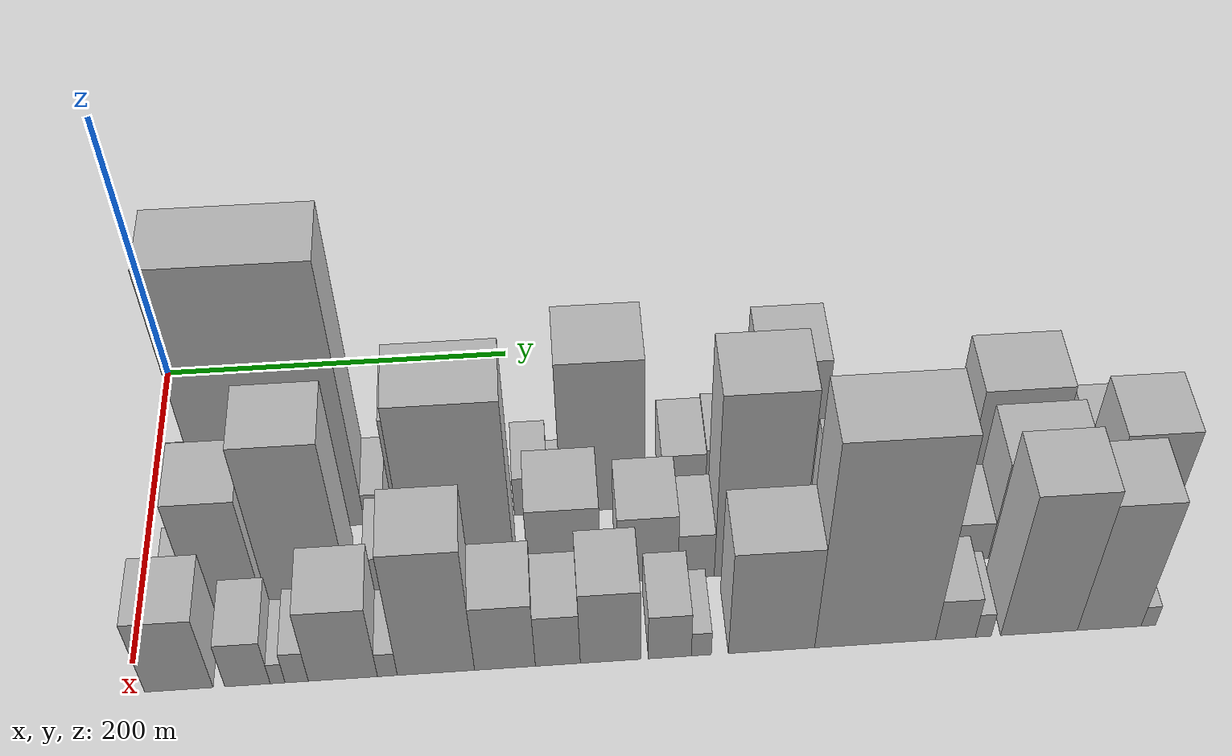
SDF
<sdf version="1.6">
 <world name="default">
  <model name="building_16">
   <static>1</static>
   <pose>100.0000 21.5906 0 0.000000 0.000000 0.000000</pose>
   <link name="link">
    <pose>0 0 16.50 0 0 0</pose>
    <collision name="collision"><geometry><box><size>40.0000 17.9257 33.0000</size></box></geometry></collision>
    <visual name="visual">
     <cast_shadows>0</cast_shadows>
     <geometry><box><size>40.0000 17.9257 33.0000</size></box></geometry>
     <material>
      <script>
       <uri>model://HANNAS_wall/materials/scripts</uri>
       <uri>model://HANNAS_wall/materials/textures</uri>
       <name>vrc/HANNAS_wall</name>
      </script>
     </material>
    </visual>
   </link>
  </model>
  <model name="building_17">
   <static>1</static>
   <pose>100.0000 77.3882 0 0.000000 0.000000 0.000000</pose>
   <link name="link">
    <pose>0 0 105.00 0 0 0</pose>
    <collision name="collision"><geometry><box><size>40.0000 83.6695 210.0000</size></box></geometry></collision>
    <visual name="visual">
     <cast_shadows>0</cast_shadows>
     <geometry><box><size>40.0000 83.6695 210.0000</size></box></geometry>
     <material>
      <script>
       <uri>model://HANNAS_wall/materials/scripts</uri>
       <uri>model://HANNAS_wall/materials/textures</uri>
       <name>vrc/HANNAS_wall</name>
      </script>
     </material>
    </visual>
   </link>
  </model>
  <model name="building_18">
   <static>1</static>
   <pose>100.0000 125.5073 0 0.000000 0.000000 0.000000</pose>
   <link name="link">
    <pose>0 0 13.50 0 0 0</pose>
    <collision name="collision"><geometry><box><size>40.0000 12.5687 27.0000</size></box></geometry></collision>
    <visual name="visual">
     <cast_shadows>0</cast_shadows>
     <geometry><box><size>40.0000 12.5687 27.0000</size></box></geometry>
     <material>
      <script>
       <uri>model://HANNAS_wall/materials/scripts</uri>
       <uri>model://HANNAS_wall/materials/textures</uri>
       <name>vrc/HANNAS_wall</name>
      </script>
     </material>
    </visual>
   </link>
  </model>
  <model name="building_19">
   <static>1</static>
   <pose>100.0000 162.1623 0 0.000000 0.000000 0.000000</pose>
   <link name="link">
    <pose>0 0 45.00 0 0 0</pose>
    <collision name="collision"><geometry><box><size>40.0000 52.7413 90.0000</size></box></geometry></collision>
    <visual name="visual">
     <cast_shadows>0</cast_shadows>
     <geometry><box><size>40.0000 52.7413 90.0000</size></box></geometry>
     <material>
      <script>
       <uri>model://HANNAS_wall/materials/scripts</uri>
       <uri>model://HANNAS_wall/materials/textures</uri>
       <name>vrc/HANNAS_wall</name>
      </script>
     </material>
    </visual>
   </link>
  </model>
  <model name="building_20">
   <static>1</static>
   <pose>100.0000 191.7754 0 0.000000 0.000000 0.000000</pose>
   <link name="link">
    <pose>0 0 7.50 0 0 0</pose>
    <collision name="collision"><geometry><box><size>40.0000 6.4849 15.0000</size></box></geometry></collision>
    <visual name="visual">
     <cast_shadows>0</cast_shadows>
     <geometry><box><size>40.0000 6.4849 15.0000</size></box></geometry>
     <material>
      <script>
       <uri>model://HANNAS_wall/materials/scripts</uri>
       <uri>model://HANNAS_wall/materials/textures</uri>
       <name>vrc/HANNAS_wall</name>
      </script>
     </material>
    </visual>
   </link>
  </model>
  <model name="building_21">
   <static>1</static>
   <pose>100.0000 211.6405 0 0.000000 0.000000 0.000000</pose>
   <link name="link">
    <pose>0 0 16.50 0 0 0</pose>
    <collision name="collision"><geometry><box><size>40.0000 19.2453 33.0000</size></box></geometry></collision>
    <visual name="visual">
     <cast_shadows>0</cast_shadows>
     <geometry><box><size>40.0000 19.2453 33.0000</size></box></geometry>
     <material>
      <script>
       <uri>model://HANNAS_wall/materials/scripts</uri>
       <uri>model://HANNAS_wall/materials/textures</uri>
       <name>vrc/HANNAS_wall</name>
      </script>
     </material>
    </visual>
   </link>
  </model>
  <model name="building_22">
   <static>1</static>
   <pose>100.0000 224.7360 0 0.000000 0.000000 0.000000</pose>
   <link name="link">
    <pose>0 0 7.50 0 0 0</pose>
    <collision name="collision"><geometry><box><size>40.0000 6.9459 15.0000</size></box></geometry></collision>
    <visual name="visual">
     <cast_shadows>0</cast_shadows>
     <geometry><box><size>40.0000 6.9459 15.0000</size></box></geometry>
     <material>
      <script>
       <uri>model://HANNAS_wall/materials/scripts</uri>
       <uri>model://HANNAS_wall/materials/textures</uri>
       <name>vrc/HANNAS_wall</name>
      </script>
     </material>
    </visual>
   </link>
  </model>
  <model name="building_23">
   <static>1</static>
   <pose>100.0000 251.5216 0 0.000000 0.000000 0.000000</pose>
   <link name="link">
    <pose>0 0 63.00 0 0 0</pose>
    <collision name="collision"><geometry><box><size>40.0000 46.6253 126.0000</size></box></geometry></collision>
    <visual name="visual">
     <cast_shadows>0</cast_shadows>
     <geometry><box><size>40.0000 46.6253 126.0000</size></box></geometry>
     <material>
      <script>
       <uri>model://HANNAS_wall/materials/scripts</uri>
       <uri>model://HANNAS_wall/materials/textures</uri>
       <name>vrc/HANNAS_wall</name>
      </script>
     </material>
    </visual>
   </link>
  </model>
  <model name="building_24">
   <static>1</static>
   <pose>100.0000 296.1276 0 0.000000 0.000000 0.000000</pose>
   <link name="link">
    <pose>0 0 22.50 0 0 0</pose>
    <collision name="collision"><geometry><box><size>40.0000 24.5866 45.0000</size></box></geometry></collision>
    <visual name="visual">
     <cast_shadows>0</cast_shadows>
     <geometry><box><size>40.0000 24.5866 45.0000</size></box></geometry>
     <material>
      <script>
       <uri>model://HANNAS_wall/materials/scripts</uri>
       <uri>model://HANNAS_wall/materials/textures</uri>
       <name>vrc/HANNAS_wall</name>
      </script>
     </material>
    </visual>
   </link>
  </model>
  <model name="building_25">
   <static>1</static>
   <pose>100.0000 320.8826 0 0.000000 0.000000 0.000000</pose>
   <link name="link">
    <pose>0 0 24.00 0 0 0</pose>
    <collision name="collision"><geometry><box><size>40.0000 24.9234 48.0000</size></box></geometry></collision>
    <visual name="visual">
     <cast_shadows>0</cast_shadows>
     <geometry><box><size>40.0000 24.9234 48.0000</size></box></geometry>
     <material>
      <script>
       <uri>model://HANNAS_wall/materials/scripts</uri>
       <uri>model://HANNAS_wall/materials/textures</uri>
       <name>vrc/HANNAS_wall</name>
      </script>
     </material>
    </visual>
   </link>
  </model>
  <model name="building_26">
   <static>1</static>
   <pose>100.0000 352.5367 0 0.000000 0.000000 0.000000</pose>
   <link name="link">
    <pose>0 0 58.50 0 0 0</pose>
    <collision name="collision"><geometry><box><size>40.0000 38.3847 117.0000</size></box></geometry></collision>
    <visual name="visual">
     <cast_shadows>0</cast_shadows>
     <geometry><box><size>40.0000 38.3847 117.0000</size></box></geometry>
     <material>
      <script>
       <uri>model://HANNAS_wall/materials/scripts</uri>
       <uri>model://HANNAS_wall/materials/textures</uri>
       <name>vrc/HANNAS_wall</name>
      </script>
     </material>
    </visual>
   </link>
  </model>
  <model name="building_27">
   <static>1</static>
   <pose>100.0000 480.1514 0 0.000000 0.000000 0.000000</pose>
   <link name="link">
    <pose>0 0 42.00 0 0 0</pose>
    <collision name="collision"><geometry><box><size>40.0000 48.9483 84.0000</size></box></geometry></collision>
    <visual name="visual">
     <cast_shadows>0</cast_shadows>
     <geometry><box><size>40.0000 48.9483 84.0000</size></box></geometry>
     <material>
      <script>
       <uri>model://HANNAS_wall/materials/scripts</uri>
       <uri>model://HANNAS_wall/materials/textures</uri>
       <name>vrc/HANNAS_wall</name>
      </script>
     </material>
    </visual>
   </link>
  </model>
  <model name="building_28">
   <static>1</static>
   <pose>100.0000 510.3059 0 0.000000 0.000000 0.000000</pose>
   <link name="link">
    <pose>0 0 13.50 0 0 0</pose>
    <collision name="collision"><geometry><box><size>40.0000 11.3608 27.0000</size></box></geometry></collision>
    <visual name="visual">
     <cast_shadows>0</cast_shadows>
     <geometry><box><size>40.0000 11.3608 27.0000</size></box></geometry>
     <material>
      <script>
       <uri>model://HANNAS_wall/materials/scripts</uri>
       <uri>model://HANNAS_wall/materials/textures</uri>
       <name>vrc/HANNAS_wall</name>
      </script>
     </material>
    </visual>
   </link>
  </model>
  <model name="building_29">
   <static>1</static>
   <pose>100.0000 531.5163 0 0.000000 0.000000 0.000000</pose>
   <link name="link">
    <pose>0 0 18.00 0 0 0</pose>
    <collision name="collision"><geometry><box><size>40.0000 21.0600 36.0000</size></box></geometry></collision>
    <visual name="visual">
     <cast_shadows>0</cast_shadows>
     <geometry><box><size>40.0000 21.0600 36.0000</size></box></geometry>
     <material>
      <script>
       <uri>model://HANNAS_wall/materials/scripts</uri>
       <uri>model://HANNAS_wall/materials/textures</uri>
       <name>vrc/HANNAS_wall</name>
      </script>
     </material>
    </visual>
   </link>
  </model>
  <model name="building_45">
   <static>1</static>
   <pose>149.0000 17.3523 0 0.000000 0.000000 0.000000</pose>
   <link name="link">
    <pose>0 0 10.50 0 0 0</pose>
    <collision name="collision"><geometry><box><size>40.0000 9.7589 21.0000</size></box></geometry></collision>
    <visual name="visual">
     <cast_shadows>0</cast_shadows>
     <geometry><box><size>40.0000 9.7589 21.0000</size></box></geometry>
     <material>
      <script>
       <uri>model://HANNAS_wall/materials/scripts</uri>
       <uri>model://HANNAS_wall/materials/textures</uri>
       <name>vrc/HANNAS_wall</name>
      </script>
     </material>
    </visual>
   </link>
  </model>
  <model name="building_46">
   <static>1</static>
   <pose>149.0000 47.5939 0 0.000000 0.000000 0.000000</pose>
   <link name="link">
    <pose>0 0 46.50 0 0 0</pose>
    <collision name="collision"><geometry><box><size>40.0000 36.7242 93.0000</size></box></geometry></collision>
    <visual name="visual">
     <cast_shadows>0</cast_shadows>
     <geometry><box><size>40.0000 36.7242 93.0000</size></box></geometry>
     <material>
      <script>
       <uri>model://HANNAS_wall/materials/scripts</uri>
       <uri>model://HANNAS_wall/materials/textures</uri>
       <name>vrc/HANNAS_wall</name>
      </script>
     </material>
    </visual>
   </link>
  </model>
  <model name="building_47">
   <static>1</static>
   <pose>149.0000 90.8027 0 0.000000 0.000000 0.000000</pose>
   <link name="link">
    <pose>0 0 67.50 0 0 0</pose>
    <collision name="collision"><geometry><box><size>40.0000 43.6934 135.0000</size></box></geometry></collision>
    <visual name="visual">
     <cast_shadows>0</cast_shadows>
     <geometry><box><size>40.0000 43.6934 135.0000</size></box></geometry>
     <material>
      <script>
       <uri>model://HANNAS_wall/materials/scripts</uri>
       <uri>model://HANNAS_wall/materials/textures</uri>
       <name>vrc/HANNAS_wall</name>
      </script>
     </material>
    </visual>
   </link>
  </model>
  <model name="building_48">
   <static>1</static>
   <pose>149.0000 132.5423 0 0.000000 0.000000 0.000000</pose>
   <link name="link">
    <pose>0 0 18.00 0 0 0</pose>
    <collision name="collision"><geometry><box><size>40.0000 19.7859 36.0000</size></box></geometry></collision>
    <visual name="visual">
     <cast_shadows>0</cast_shadows>
     <geometry><box><size>40.0000 19.7859 36.0000</size></box></geometry>
     <material>
      <script>
       <uri>model://HANNAS_wall/materials/scripts</uri>
       <uri>model://HANNAS_wall/materials/textures</uri>
       <name>vrc/HANNAS_wall</name>
      </script>
     </material>
    </visual>
   </link>
  </model>
  <model name="building_49">
   <static>1</static>
   <pose>149.0000 173.6036 0 0.000000 0.000000 0.000000</pose>
   <link name="link">
    <pose>0 0 79.50 0 0 0</pose>
    <collision name="collision"><geometry><box><size>40.0000 56.3367 159.0000</size></box></geometry></collision>
    <visual name="visual">
     <cast_shadows>0</cast_shadows>
     <geometry><box><size>40.0000 56.3367 159.0000</size></box></geometry>
     <material>
      <script>
       <uri>model://HANNAS_wall/materials/scripts</uri>
       <uri>model://HANNAS_wall/materials/textures</uri>
       <name>vrc/HANNAS_wall</name>
      </script>
     </material>
    </visual>
   </link>
  </model>
  <model name="building_50">
   <static>1</static>
   <pose>149.0000 228.0568 0 0.000000 0.000000 0.000000</pose>
   <link name="link">
    <pose>0 0 34.50 0 0 0</pose>
    <collision name="collision"><geometry><box><size>40.0000 38.5696 69.0000</size></box></geometry></collision>
    <visual name="visual">
     <cast_shadows>0</cast_shadows>
     <geometry><box><size>40.0000 38.5696 69.0000</size></box></geometry>
     <material>
      <script>
       <uri>model://HANNAS_wall/materials/scripts</uri>
       <uri>model://HANNAS_wall/materials/textures</uri>
       <name>vrc/HANNAS_wall</name>
      </script>
     </material>
    </visual>
   </link>
  </model>
  <model name="building_51">
   <static>1</static>
   <pose>149.0000 272.6968 0 0.000000 0.000000 0.000000</pose>
   <link name="link">
    <pose>0 0 28.50 0 0 0</pose>
    <collision name="collision"><geometry><box><size>40.0000 32.7104 57.0000</size></box></geometry></collision>
    <visual name="visual">
     <cast_shadows>0</cast_shadows>
     <geometry><box><size>40.0000 32.7104 57.0000</size></box></geometry>
     <material>
      <script>
       <uri>model://HANNAS_wall/materials/scripts</uri>
       <uri>model://HANNAS_wall/materials/textures</uri>
       <name>vrc/HANNAS_wall</name>
      </script>
     </material>
    </visual>
   </link>
  </model>
  <model name="building_52">
   <static>1</static>
   <pose>149.0000 298.8632 0 0.000000 0.000000 0.000000</pose>
   <link name="link">
    <pose>0 0 19.50 0 0 0</pose>
    <collision name="collision"><geometry><box><size>40.0000 19.6224 39.0000</size></box></geometry></collision>
    <visual name="visual">
     <cast_shadows>0</cast_shadows>
     <geometry><box><size>40.0000 19.6224 39.0000</size></box></geometry>
     <material>
      <script>
       <uri>model://HANNAS_wall/materials/scripts</uri>
       <uri>model://HANNAS_wall/materials/textures</uri>
       <name>vrc/HANNAS_wall</name>
      </script>
     </material>
    </visual>
   </link>
  </model>
  <model name="building_53">
   <static>1</static>
   <pose>149.0000 332.2954 0 0.000000 0.000000 0.000000</pose>
   <link name="link">
    <pose>0 0 76.50 0 0 0</pose>
    <collision name="collision"><geometry><box><size>40.0000 47.2420 153.0000</size></box></geometry></collision>
    <visual name="visual">
     <cast_shadows>0</cast_shadows>
     <geometry><box><size>40.0000 47.2420 153.0000</size></box></geometry>
     <material>
      <script>
       <uri>model://HANNAS_wall/materials/scripts</uri>
       <uri>model://HANNAS_wall/materials/textures</uri>
       <name>vrc/HANNAS_wall</name>
      </script>
     </material>
    </visual>
   </link>
  </model>
  <model name="building_54">
   <static>1</static>
   <pose>149.0000 387.8849 0 0.000000 0.000000 0.000000</pose>
   <link name="link">
    <pose>0 0 40.50 0 0 0</pose>
    <collision name="collision"><geometry><box><size>40.0000 43.9369 81.0000</size></box></geometry></collision>
    <visual name="visual">
     <cast_shadows>0</cast_shadows>
     <geometry><box><size>40.0000 43.9369 81.0000</size></box></geometry>
     <material>
      <script>
       <uri>model://HANNAS_wall/materials/scripts</uri>
       <uri>model://HANNAS_wall/materials/textures</uri>
       <name>vrc/HANNAS_wall</name>
      </script>
     </material>
    </visual>
   </link>
  </model>
  <model name="building_55">
   <static>1</static>
   <pose>149.0000 423.6874 0 0.000000 0.000000 0.000000</pose>
   <link name="link">
    <pose>0 0 13.50 0 0 0</pose>
    <collision name="collision"><geometry><box><size>40.0000 11.6682 27.0000</size></box></geometry></collision>
    <visual name="visual">
     <cast_shadows>0</cast_shadows>
     <geometry><box><size>40.0000 11.6682 27.0000</size></box></geometry>
     <material>
      <script>
       <uri>model://HANNAS_wall/materials/scripts</uri>
       <uri>model://HANNAS_wall/materials/textures</uri>
       <name>vrc/HANNAS_wall</name>
      </script>
     </material>
    </visual>
   </link>
  </model>
  <model name="building_56">
   <static>1</static>
   <pose>149.0000 449.2815 0 0.000000 0.000000 0.000000</pose>
   <link name="link">
    <pose>0 0 16.50 0 0 0</pose>
    <collision name="collision"><geometry><box><size>40.0000 19.5199 33.0000</size></box></geometry></collision>
    <visual name="visual">
     <cast_shadows>0</cast_shadows>
     <geometry><box><size>40.0000 19.5199 33.0000</size></box></geometry>
     <material>
      <script>
       <uri>model://HANNAS_wall/materials/scripts</uri>
       <uri>model://HANNAS_wall/materials/textures</uri>
       <name>vrc/HANNAS_wall</name>
      </script>
     </material>
    </visual>
   </link>
  </model>
  <model name="building_57">
   <static>1</static>
   <pose>149.0000 483.1356 0 0.000000 0.000000 0.000000</pose>
   <link name="link">
    <pose>0 0 42.00 0 0 0</pose>
    <collision name="collision"><geometry><box><size>40.0000 48.1883 84.0000</size></box></geometry></collision>
    <visual name="visual">
     <cast_shadows>0</cast_shadows>
     <geometry><box><size>40.0000 48.1883 84.0000</size></box></geometry>
     <material>
      <script>
       <uri>model://HANNAS_wall/materials/scripts</uri>
       <uri>model://HANNAS_wall/materials/textures</uri>
       <name>vrc/HANNAS_wall</name>
      </script>
     </material>
    </visual>
   </link>
  </model>
  <model name="building_58">
   <static>1</static>
   <pose>149.0000 535.7503 0 0.000000 0.000000 0.000000</pose>
   <link name="link">
    <pose>0 0 51.00 0 0 0</pose>
    <collision name="collision"><geometry><box><size>40.0000 39.0412 102.0000</size></box></geometry></collision>
    <visual name="visual">
     <cast_shadows>0</cast_shadows>
     <geometry><box><size>40.0000 39.0412 102.0000</size></box></geometry>
     <material>
      <script>
       <uri>model://HANNAS_wall/materials/scripts</uri>
       <uri>model://HANNAS_wall/materials/textures</uri>
       <name>vrc/HANNAS_wall</name>
      </script>
     </material>
    </visual>
   </link>
  </model>
  <model name="building_75">
   <static>1</static>
   <pose>198.0000 25.5639 0 0.000000 0.000000 0.000000</pose>
   <link name="link">
    <pose>0 0 31.50 0 0 0</pose>
    <collision name="collision"><geometry><box><size>40.0000 35.0696 63.0000</size></box></geometry></collision>
    <visual name="visual">
     <cast_shadows>0</cast_shadows>
     <geometry><box><size>40.0000 35.0696 63.0000</size></box></geometry>
     <material>
      <script>
       <uri>model://HANNAS_wall/materials/scripts</uri>
       <uri>model://HANNAS_wall/materials/textures</uri>
       <name>vrc/HANNAS_wall</name>
      </script>
     </material>
    </visual>
   </link>
  </model>
  <model name="building_76">
   <static>1</static>
   <pose>198.0000 60.7729 0 0.000000 0.000000 0.000000</pose>
   <link name="link">
    <pose>0 0 19.50 0 0 0</pose>
    <collision name="collision"><geometry><box><size>40.0000 23.3485 39.0000</size></box></geometry></collision>
    <visual name="visual">
     <cast_shadows>0</cast_shadows>
     <geometry><box><size>40.0000 23.3485 39.0000</size></box></geometry>
     <material>
      <script>
       <uri>model://HANNAS_wall/materials/scripts</uri>
       <uri>model://HANNAS_wall/materials/textures</uri>
       <name>vrc/HANNAS_wall</name>
      </script>
     </material>
    </visual>
   </link>
  </model>
  <model name="building_77">
   <static>1</static>
   <pose>198.0000 76.2801 0 0.000000 0.000000 0.000000</pose>
   <link name="link">
    <pose>0 0 9.00 0 0 0</pose>
    <collision name="collision"><geometry><box><size>40.0000 7.6658 18.0000</size></box></geometry></collision>
    <visual name="visual">
     <cast_shadows>0</cast_shadows>
     <geometry><box><size>40.0000 7.6658 18.0000</size></box></geometry>
     <material>
      <script>
       <uri>model://HANNAS_wall/materials/scripts</uri>
       <uri>model://HANNAS_wall/materials/textures</uri>
       <name>vrc/HANNAS_wall</name>
      </script>
     </material>
    </visual>
   </link>
  </model>
  <model name="building_78">
   <static>1</static>
   <pose>198.0000 86.0988 0 0.000000 0.000000 0.000000</pose>
   <link name="link">
    <pose>0 0 13.50 0 0 0</pose>
    <collision name="collision"><geometry><box><size>40.0000 11.9716 27.0000</size></box></geometry></collision>
    <visual name="visual">
     <cast_shadows>0</cast_shadows>
     <geometry><box><size>40.0000 11.9716 27.0000</size></box></geometry>
     <material>
      <script>
       <uri>model://HANNAS_wall/materials/scripts</uri>
       <uri>model://HANNAS_wall/materials/textures</uri>
       <name>vrc/HANNAS_wall</name>
      </script>
     </material>
    </visual>
   </link>
  </model>
  <model name="building_79">
   <static>1</static>
   <pose>198.0000 109.9560 0 0.000000 0.000000 0.000000</pose>
   <link name="link">
    <pose>0 0 31.50 0 0 0</pose>
    <collision name="collision"><geometry><box><size>40.0000 35.7428 63.0000</size></box></geometry></collision>
    <visual name="visual">
     <cast_shadows>0</cast_shadows>
     <geometry><box><size>40.0000 35.7428 63.0000</size></box></geometry>
     <material>
      <script>
       <uri>model://HANNAS_wall/materials/scripts</uri>
       <uri>model://HANNAS_wall/materials/textures</uri>
       <name>vrc/HANNAS_wall</name>
      </script>
     </material>
    </visual>
   </link>
  </model>
  <model name="building_80">
   <static>1</static>
   <pose>198.0000 132.9743 0 0.000000 0.000000 0.000000</pose>
   <link name="link">
    <pose>0 0 10.50 0 0 0</pose>
    <collision name="collision"><geometry><box><size>40.0000 10.2938 21.0000</size></box></geometry></collision>
    <visual name="visual">
     <cast_shadows>0</cast_shadows>
     <geometry><box><size>40.0000 10.2938 21.0000</size></box></geometry>
     <material>
      <script>
       <uri>model://HANNAS_wall/materials/scripts</uri>
       <uri>model://HANNAS_wall/materials/textures</uri>
       <name>vrc/HANNAS_wall</name>
      </script>
     </material>
    </visual>
   </link>
  </model>
  <model name="building_81">
   <static>1</static>
   <pose>198.0000 158.1786 0 0.000000 0.000000 0.000000</pose>
   <link name="link">
    <pose>0 0 54.00 0 0 0</pose>
    <collision name="collision"><geometry><box><size>40.0000 40.1147 108.0000</size></box></geometry></collision>
    <visual name="visual">
     <cast_shadows>0</cast_shadows>
     <geometry><box><size>40.0000 40.1147 108.0000</size></box></geometry>
     <material>
      <script>
       <uri>model://HANNAS_wall/materials/scripts</uri>
       <uri>model://HANNAS_wall/materials/textures</uri>
       <name>vrc/HANNAS_wall</name>
      </script>
     </material>
    </visual>
   </link>
  </model>
  <model name="building_82">
   <static>1</static>
   <pose>198.0000 194.0874 0 0.000000 0.000000 0.000000</pose>
   <link name="link">
    <pose>0 0 28.50 0 0 0</pose>
    <collision name="collision"><geometry><box><size>40.0000 31.7029 57.0000</size></box></geometry></collision>
    <visual name="visual">
     <cast_shadows>0</cast_shadows>
     <geometry><box><size>40.0000 31.7029 57.0000</size></box></geometry>
     <material>
      <script>
       <uri>model://HANNAS_wall/materials/scripts</uri>
       <uri>model://HANNAS_wall/materials/textures</uri>
       <name>vrc/HANNAS_wall</name>
      </script>
     </material>
    </visual>
   </link>
  </model>
  <model name="building_83">
   <static>1</static>
   <pose>198.0000 221.6869 0 0.000000 0.000000 0.000000</pose>
   <link name="link">
    <pose>0 0 22.50 0 0 0</pose>
    <collision name="collision"><geometry><box><size>40.0000 23.4960 45.0000</size></box></geometry></collision>
    <visual name="visual">
     <cast_shadows>0</cast_shadows>
     <geometry><box><size>40.0000 23.4960 45.0000</size></box></geometry>
     <material>
      <script>
       <uri>model://HANNAS_wall/materials/scripts</uri>
       <uri>model://HANNAS_wall/materials/textures</uri>
       <name>vrc/HANNAS_wall</name>
      </script>
     </material>
    </visual>
   </link>
  </model>
  <model name="building_84">
   <static>1</static>
   <pose>198.0000 249.2877 0 0.000000 0.000000 0.000000</pose>
   <link name="link">
    <pose>0 0 31.50 0 0 0</pose>
    <collision name="collision"><geometry><box><size>40.0000 31.7057 63.0000</size></box></geometry></collision>
    <visual name="visual">
     <cast_shadows>0</cast_shadows>
     <geometry><box><size>40.0000 31.7057 63.0000</size></box></geometry>
     <material>
      <script>
       <uri>model://HANNAS_wall/materials/scripts</uri>
       <uri>model://HANNAS_wall/materials/textures</uri>
       <name>vrc/HANNAS_wall</name>
      </script>
     </material>
    </visual>
   </link>
  </model>
  <model name="building_85">
   <static>1</static>
   <pose>198.0000 280.4276 0 0.000000 0.000000 0.000000</pose>
   <link name="link">
    <pose>0 0 19.50 0 0 0</pose>
    <collision name="collision"><geometry><box><size>40.0000 22.5741 39.0000</size></box></geometry></collision>
    <visual name="visual">
     <cast_shadows>0</cast_shadows>
     <geometry><box><size>40.0000 22.5741 39.0000</size></box></geometry>
     <material>
      <script>
       <uri>model://HANNAS_wall/materials/scripts</uri>
       <uri>model://HANNAS_wall/materials/textures</uri>
       <name>vrc/HANNAS_wall</name>
      </script>
     </material>
    </visual>
   </link>
  </model>
  <model name="building_86">
   <static>1</static>
   <pose>198.0000 296.9584 0 0.000000 0.000000 0.000000</pose>
   <link name="link">
    <pose>0 0 10.50 0 0 0</pose>
    <collision name="collision"><geometry><box><size>40.0000 10.4875 21.0000</size></box></geometry></collision>
    <visual name="visual">
     <cast_shadows>0</cast_shadows>
     <geometry><box><size>40.0000 10.4875 21.0000</size></box></geometry>
     <material>
      <script>
       <uri>model://HANNAS_wall/materials/scripts</uri>
       <uri>model://HANNAS_wall/materials/textures</uri>
       <name>vrc/HANNAS_wall</name>
      </script>
     </material>
    </visual>
   </link>
  </model>
  <model name="building_87">
   <static>1</static>
   <pose>198.0000 334.0278 0 0.000000 0.000000 0.000000</pose>
   <link name="link">
    <pose>0 0 45.00 0 0 0</pose>
    <collision name="collision"><geometry><box><size>40.0000 45.6512 90.0000</size></box></geometry></collision>
    <visual name="visual">
     <cast_shadows>0</cast_shadows>
     <geometry><box><size>40.0000 45.6512 90.0000</size></box></geometry>
     <material>
      <script>
       <uri>model://HANNAS_wall/materials/scripts</uri>
       <uri>model://HANNAS_wall/materials/textures</uri>
       <name>vrc/HANNAS_wall</name>
      </script>
     </material>
    </visual>
   </link>
  </model>
  <model name="building_88">
   <static>1</static>
   <pose>198.0000 388.9449 0 0.000000 0.000000 0.000000</pose>
   <link name="link">
    <pose>0 0 87.00 0 0 0</pose>
    <collision name="collision"><geometry><box><size>40.0000 64.1831 174.0000</size></box></geometry></collision>
    <visual name="visual">
     <cast_shadows>0</cast_shadows>
     <geometry><box><size>40.0000 64.1831 174.0000</size></box></geometry>
     <material>
      <script>
       <uri>model://HANNAS_wall/materials/scripts</uri>
       <uri>model://HANNAS_wall/materials/textures</uri>
       <name>vrc/HANNAS_wall</name>
      </script>
     </material>
    </visual>
   </link>
  </model>
  <model name="building_89">
   <static>1</static>
   <pose>198.0000 431.7217 0 0.000000 0.000000 0.000000</pose>
   <link name="link">
    <pose>0 0 18.00 0 0 0</pose>
    <collision name="collision"><geometry><box><size>40.0000 21.3703 36.0000</size></box></geometry></collision>
    <visual name="visual">
     <cast_shadows>0</cast_shadows>
     <geometry><box><size>40.0000 21.3703 36.0000</size></box></geometry>
     <material>
      <script>
       <uri>model://HANNAS_wall/materials/scripts</uri>
       <uri>model://HANNAS_wall/materials/textures</uri>
       <name>vrc/HANNAS_wall</name>
      </script>
     </material>
    </visual>
   </link>
  </model>
  <model name="building_90">
   <static>1</static>
   <pose>198.0000 446.6957 0 0.000000 0.000000 0.000000</pose>
   <link name="link">
    <pose>0 0 10.50 0 0 0</pose>
    <collision name="collision"><geometry><box><size>40.0000 8.5778 21.0000</size></box></geometry></collision>
    <visual name="visual">
     <cast_shadows>0</cast_shadows>
     <geometry><box><size>40.0000 8.5778 21.0000</size></box></geometry>
     <material>
      <script>
       <uri>model://HANNAS_wall/materials/scripts</uri>
       <uri>model://HANNAS_wall/materials/textures</uri>
       <name>vrc/HANNAS_wall</name>
      </script>
     </material>
    </visual>
   </link>
  </model>
  <model name="building_91">
   <static>1</static>
   <pose>198.0000 476.5475 0 0.000000 0.000000 0.000000</pose>
   <link name="link">
    <pose>0 0 61.50 0 0 0</pose>
    <collision name="collision"><geometry><box><size>40.0000 41.1256 123.0000</size></box></geometry></collision>
    <visual name="visual">
     <cast_shadows>0</cast_shadows>
     <geometry><box><size>40.0000 41.1256 123.0000</size></box></geometry>
     <material>
      <script>
       <uri>model://HANNAS_wall/materials/scripts</uri>
       <uri>model://HANNAS_wall/materials/textures</uri>
       <name>vrc/HANNAS_wall</name>
      </script>
     </material>
    </visual>
   </link>
  </model>
  <model name="building_92">
   <static>1</static>
   <pose>198.0000 514.2958 0 0.000000 0.000000 0.000000</pose>
   <link name="link">
    <pose>0 0 55.50 0 0 0</pose>
    <collision name="collision"><geometry><box><size>40.0000 34.3711 111.0000</size></box></geometry></collision>
    <visual name="visual">
     <cast_shadows>0</cast_shadows>
     <geometry><box><size>40.0000 34.3711 111.0000</size></box></geometry>
     <material>
      <script>
       <uri>model://HANNAS_wall/materials/scripts</uri>
       <uri>model://HANNAS_wall/materials/textures</uri>
       <name>vrc/HANNAS_wall</name>
      </script>
     </material>
    </visual>
   </link>
  </model>
  <model name="building_93">
   <static>1</static>
   <pose>198.0000 535.3736 0 0.000000 0.000000 0.000000</pose>
   <link name="link">
    <pose>0 0 9.00 0 0 0</pose>
    <collision name="collision"><geometry><box><size>40.0000 7.7846 18.0000</size></box></geometry></collision>
    <visual name="visual">
     <cast_shadows>0</cast_shadows>
     <geometry><box><size>40.0000 7.7846 18.0000</size></box></geometry>
     <material>
      <script>
       <uri>model://HANNAS_wall/materials/scripts</uri>
       <uri>model://HANNAS_wall/materials/textures</uri>
       <name>vrc/HANNAS_wall</name>
      </script>
     </material>
    </visual>
   </link>
  </model>
 </world>
</sdf>
